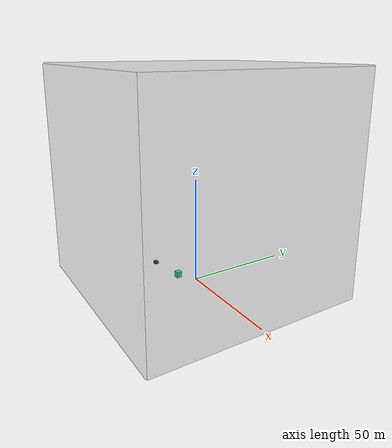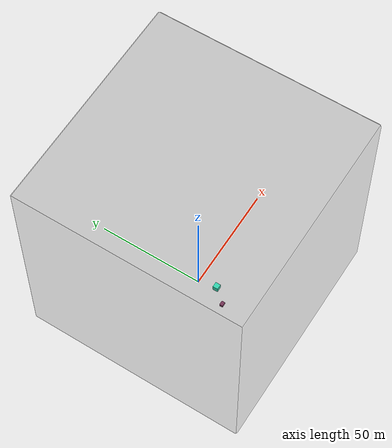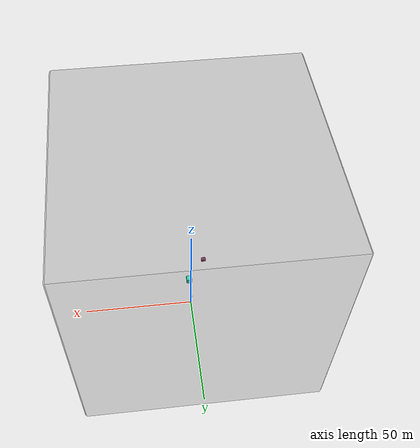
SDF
<sdf version='1.11'>
  <world name='world_0'>
    <gravity>0 0 -9.8066499999999994</gravity>
    <magnetic_field>5.5644999999999998e-06 2.2875799999999999e-05 -4.2388400000000002e-05</magnetic_field>
    <wind>
      <linear_velocity>9 6 6</linear_velocity>
    </wind>
    <physics default='false' type='ode'>
      <max_step_size>0.001</max_step_size>
      <real_time_factor>1</real_time_factor>
      <max_contacts>20</max_contacts>
    </physics>
    <model name='model_0'>
      <static>false</static>
      <self_collide>false</self_collide>
      <allow_auto_disable>true</allow_auto_disable>
      <enable_wind>false</enable_wind>
      <pose>-0.90230473867083383 -9.002325643670531 1.2890866828711856 0 0 0</pose>
      <link name='link_0'>
        <pose>0.72125466039604902 -0.59984433198233944 3.9537865830542285 0 0 0</pose>
        <inertial>
          <pose>0 0 0 0 0 0</pose>
          <mass>1</mass>
          <inertia>
            <ixx>1</ixx>
            <ixy>0</ixy>
            <ixz>0</ixz>
            <iyy>1</iyy>
            <iyz>0</iyz>
            <izz>1</izz>
          </inertia>
        </inertial>
        <enable_wind>false</enable_wind>
        <collision name='collision_0'>
          <pose>0 0 0 0 0 0</pose>
          <geometry>
            <box>
              <size>2.4986605137222089 2.4635828770102099 2.640589075707406</size>
            </box>
          </geometry>
          <surface>
            <contact>
              <collide_bitmask>255</collide_bitmask>
            </contact>
            <friction>
              <ode>
                <mu>1</mu>
                <mu2>1</mu2>
                <slip1>0</slip1>
                <slip2>0</slip2>
                <fdir1>0 0 0</fdir1>
              </ode>
            </friction>
          </surface>
        </collision>
        <visual name='visual_0'>
          <pose>0 0 0 0 0 0</pose>
          <geometry>
            <box>
              <size>2.4986605137222089 2.4635828770102099 2.640589075707406</size>
            </box>
          </geometry>
          <cast_shadows>true</cast_shadows>
          <laser_retro>0</laser_retro>
          <transparency>0</transparency>
          <visibility_flags>4294967295</visibility_flags>
          <material>
            <ambient>0.18428722 0.971375585 0.780669391 1</ambient>
            <diffuse>0.18428722 0.971375585 0.780669391 1</diffuse>
            <specular>0 0 0 1</specular>
            <emissive>0 0 0 1</emissive>
            <render_order>0</render_order>
            <lighting>true</lighting>
            <double_sided>false</double_sided>
            <shader type='pixel'/>
          </material>
        </visual>
      </link>
      <link name='link_1'>
        <pose>-7.0538937806042368 -8.2380313727426184 8.7438971605000351 0 0 0</pose>
        <inertial>
          <pose>0 0 0 0 0 0</pose>
          <mass>1</mass>
          <inertia>
            <ixx>1</ixx>
            <ixy>0</ixy>
            <ixz>0</ixz>
            <iyy>1</iyy>
            <iyz>0</iyz>
            <izz>1</izz>
          </inertia>
        </inertial>
        <enable_wind>false</enable_wind>
        <collision name='collision_1'>
          <pose>0 0 0 0 0 0</pose>
          <geometry>
            <box>
              <size>2.0339239475856665 1.5881609565033477 1.1983250287752936</size>
            </box>
          </geometry>
          <surface>
            <contact>
              <collide_bitmask>255</collide_bitmask>
            </contact>
            <friction>
              <ode>
                <mu>1</mu>
                <mu2>1</mu2>
                <slip1>0</slip1>
                <slip2>0</slip2>
                <fdir1>0 0 0</fdir1>
              </ode>
            </friction>
          </surface>
        </collision>
        <visual name='visual_1'>
          <pose>0 0 0 0 0 0</pose>
          <geometry>
            <box>
              <size>2.0339239475856665 1.5881609565033477 1.1983250287752936</size>
            </box>
          </geometry>
          <cast_shadows>true</cast_shadows>
          <laser_retro>0</laser_retro>
          <transparency>0</transparency>
          <visibility_flags>4294967295</visibility_flags>
          <material>
            <ambient>0.507174075 0.198200911 0.362574875 1</ambient>
            <diffuse>0.507174075 0.198200911 0.362574875 1</diffuse>
            <specular>0 0 0 1</specular>
            <emissive>0 0 0 1</emissive>
            <render_order>0</render_order>
            <lighting>true</lighting>
            <double_sided>false</double_sided>
            <shader type='pixel'/>
          </material>
        </visual>
      </link>
      <joint name='joint_0' type='fixed'>
        <pose>0 0 0 0 0 0</pose>
        <parent>link_1</parent>
        <child>link_0</child>
        <axis>
          <xyz>0.64539463220931337 0.18669961602873403 0.74068145790895057</xyz>
          <limit>
            <lower>-inf</lower>
            <upper>inf</upper>
            <effort>inf</effort>
            <velocity>4.7368623697783709</velocity>
            <stiffness>100000000</stiffness>
            <dissipation>1</dissipation>
          </limit>
          <dynamics>
            <spring_reference>0</spring_reference>
            <spring_stiffness>0</spring_stiffness>
            <damping>0</damping>
            <friction>0</friction>
          </dynamics>
        </axis>
        <axis2>
          <xyz>0.39899724610940546 0.58182537048538596 0.70871745841107503</xyz>
          <limit>
            <lower>-inf</lower>
            <upper>inf</upper>
            <effort>inf</effort>
            <velocity>7.2170201402602965</velocity>
            <stiffness>100000000</stiffness>
            <dissipation>1</dissipation>
          </limit>
          <dynamics>
            <spring_reference>0</spring_reference>
            <spring_stiffness>0</spring_stiffness>
            <damping>0</damping>
            <friction>0</friction>
          </dynamics>
        </axis2>
      </joint>
      <plugin name='gz::sim::systems::PythonSystemLoader' filename='gz-sim-python-system-loader-system'>
        <module_name>driver</module_name>
        <force>10000</force>
      </plugin>
    </model>
    <model name='sphere'>
      <static>false</static>
      <self_collide>false</self_collide>
      <allow_auto_disable>true</allow_auto_disable>
      <enable_wind>false</enable_wind>
      <pose>0 0 5 0 0 0</pose>
      <link name='sphere_link'>
        <pose>0 0 0 0 0 0</pose>
        <inertial>
          <pose>0 0 0 0 0 0</pose>
          <mass>3</mass>
          <inertia>
            <ixx>3</ixx>
            <ixy>0</ixy>
            <ixz>0</ixz>
            <iyy>3</iyy>
            <iyz>0</iyz>
            <izz>3</izz>
          </inertia>
        </inertial>
        <enable_wind>false</enable_wind>
        <collision name='sphere_collision'>
          <pose>0 0 0 0 0 0</pose>
          <geometry>
            <sphere>
              <radius>0.5</radius>
            </sphere>
          </geometry>
          <surface>
            <contact>
              <collide_bitmask>255</collide_bitmask>
            </contact>
            <friction>
              <ode>
                <mu>1</mu>
                <mu2>1</mu2>
                <slip1>0</slip1>
                <slip2>0</slip2>
                <fdir1>0 0 0</fdir1>
              </ode>
            </friction>
          </surface>
        </collision>
        <visual name='sphere_visual'>
          <pose>0 0 0 0 0 0</pose>
          <geometry>
            <sphere>
              <radius>0.5</radius>
            </sphere>
          </geometry>
          <cast_shadows>true</cast_shadows>
          <laser_retro>0</laser_retro>
          <transparency>0</transparency>
          <visibility_flags>4294967295</visibility_flags>
          <material>
            <ambient>0 0 1 1</ambient>
            <diffuse>0 0 1 1</diffuse>
            <specular>0 0 1 1</specular>
            <emissive>0 0 0 1</emissive>
            <render_order>0</render_order>
            <lighting>true</lighting>
            <double_sided>false</double_sided>
            <shader type='pixel'/>
          </material>
        </visual>
      </link>
      <plugin name='gz::sim::systems::KineticEnergyMonitor' filename='gz-sim-kinetic-energy-monitor-system'>
        <link_name>sphere_link</link_name>
        <kinetic_energy_threshold>100</kinetic_energy_threshold>
      </plugin>
    </model>
    <model name='ground_model'>
      <static>true</static>
      <self_collide>false</self_collide>
      <allow_auto_disable>true</allow_auto_disable>
      <enable_wind>false</enable_wind>
      <pose>0 0 0 0 0 0</pose>
      <link name='ground_link'>
        <pose>0 0 0 0 0 0</pose>
        <inertial>
          <pose>0 0 0 0 0 0</pose>
          <mass>1</mass>
          <inertia>
            <ixx>1</ixx>
            <ixy>0</ixy>
            <ixz>0</ixz>
            <iyy>1</iyy>
            <iyz>0</iyz>
            <izz>1</izz>
          </inertia>
        </inertial>
        <enable_wind>false</enable_wind>
        <collision name='ground_collision'>
          <pose>0 0 0 0 0 0</pose>
          <geometry>
            <plane>
              <normal>0 0 1</normal>
              <size>100 100</size>
            </plane>
          </geometry>
          <surface>
            <contact>
              <collide_bitmask>255</collide_bitmask>
            </contact>
            <friction>
              <ode>
                <mu>1</mu>
                <mu2>1</mu2>
                <slip1>0</slip1>
                <slip2>0</slip2>
                <fdir1>0 0 0</fdir1>
              </ode>
            </friction>
          </surface>
        </collision>
      </link>
    </model>
    <model name='ceiling_model'>
      <static>true</static>
      <self_collide>false</self_collide>
      <allow_auto_disable>true</allow_auto_disable>
      <enable_wind>false</enable_wind>
      <pose>0 0 100 0 0 0</pose>
      <link name='ceiling_link'>
        <pose>0 0 0 0 0 0</pose>
        <inertial>
          <pose>0 0 0 0 0 0</pose>
          <mass>1</mass>
          <inertia>
            <ixx>1</ixx>
            <ixy>0</ixy>
            <ixz>0</ixz>
            <iyy>1</iyy>
            <iyz>0</iyz>
            <izz>1</izz>
          </inertia>
        </inertial>
        <enable_wind>false</enable_wind>
        <collision name='ceiling_collision'>
          <pose>0 0 0 0 0 0</pose>
          <geometry>
            <box>
              <size>102 102 3</size>
            </box>
          </geometry>
          <surface>
            <contact>
              <collide_bitmask>255</collide_bitmask>
            </contact>
            <friction>
              <ode>
                <mu>1</mu>
                <mu2>1</mu2>
                <slip1>0</slip1>
                <slip2>0</slip2>
                <fdir1>0 0 0</fdir1>
              </ode>
            </friction>
          </surface>
        </collision>
        <visual name='ceiling_visual'>
          <pose>0 0 0 0 0 0</pose>
          <geometry>
            <box>
              <size>102 102 3</size>
            </box>
          </geometry>
          <cast_shadows>true</cast_shadows>
          <laser_retro>0</laser_retro>
          <transparency>0</transparency>
          <visibility_flags>4294967295</visibility_flags>
          <material>
            <ambient>0.200000003 0.200000003 0.200000003 0.200000003</ambient>
            <diffuse>0.200000003 0.200000003 0.200000003 0.200000003</diffuse>
            <specular>0 0 0 1</specular>
            <emissive>0 0 0 1</emissive>
            <render_order>0</render_order>
            <lighting>true</lighting>
            <double_sided>false</double_sided>
            <shader type='pixel'/>
          </material>
        </visual>
      </link>
    </model>
    <model name='west_model'>
      <static>true</static>
      <self_collide>false</self_collide>
      <allow_auto_disable>true</allow_auto_disable>
      <enable_wind>false</enable_wind>
      <pose>0 50 50 0 0 0</pose>
      <link name='west_link'>
        <pose>0 0 0 0 0 0</pose>
        <inertial>
          <pose>0 0 0 0 0 0</pose>
          <mass>1</mass>
          <inertia>
            <ixx>1</ixx>
            <ixy>0</ixy>
            <ixz>0</ixz>
            <iyy>1</iyy>
            <iyz>0</iyz>
            <izz>1</izz>
          </inertia>
        </inertial>
        <enable_wind>false</enable_wind>
        <collision name='west_collision'>
          <pose>0 0 0 0 0 0</pose>
          <geometry>
            <box>
              <size>102 3 102</size>
            </box>
          </geometry>
          <surface>
            <contact>
              <collide_bitmask>255</collide_bitmask>
            </contact>
            <friction>
              <ode>
                <mu>1</mu>
                <mu2>1</mu2>
                <slip1>0</slip1>
                <slip2>0</slip2>
                <fdir1>0 0 0</fdir1>
              </ode>
            </friction>
          </surface>
        </collision>
        <visual name='west_visual'>
          <pose>0 0 0 0 0 0</pose>
          <geometry>
            <box>
              <size>102 3 102</size>
            </box>
          </geometry>
          <cast_shadows>true</cast_shadows>
          <laser_retro>0</laser_retro>
          <transparency>0</transparency>
          <visibility_flags>4294967295</visibility_flags>
          <material>
            <ambient>0.200000003 0.200000003 0.200000003 0.200000003</ambient>
            <diffuse>0.200000003 0.200000003 0.200000003 0.200000003</diffuse>
            <specular>0 0 0 1</specular>
            <emissive>0 0 0 1</emissive>
            <render_order>0</render_order>
            <lighting>true</lighting>
            <double_sided>false</double_sided>
            <shader type='pixel'/>
          </material>
        </visual>
      </link>
    </model>
    <model name='east_model'>
      <static>true</static>
      <self_collide>false</self_collide>
      <allow_auto_disable>true</allow_auto_disable>
      <enable_wind>false</enable_wind>
      <pose>0 -50 50 0 0 0</pose>
      <link name='east_link'>
        <pose>0 0 0 0 0 0</pose>
        <inertial>
          <pose>0 0 0 0 0 0</pose>
          <mass>1</mass>
          <inertia>
            <ixx>1</ixx>
            <ixy>0</ixy>
            <ixz>0</ixz>
            <iyy>1</iyy>
            <iyz>0</iyz>
            <izz>1</izz>
          </inertia>
        </inertial>
        <enable_wind>false</enable_wind>
        <collision name='east_collision'>
          <pose>0 0 0 0 0 0</pose>
          <geometry>
            <box>
              <size>102 3 102</size>
            </box>
          </geometry>
          <surface>
            <contact>
              <collide_bitmask>255</collide_bitmask>
            </contact>
            <friction>
              <ode>
                <mu>1</mu>
                <mu2>1</mu2>
                <slip1>0</slip1>
                <slip2>0</slip2>
                <fdir1>0 0 0</fdir1>
              </ode>
            </friction>
          </surface>
        </collision>
        <visual name='east_visual'>
          <pose>0 0 0 0 0 0</pose>
          <geometry>
            <box>
              <size>102 3 102</size>
            </box>
          </geometry>
          <cast_shadows>true</cast_shadows>
          <laser_retro>0</laser_retro>
          <transparency>0</transparency>
          <visibility_flags>4294967295</visibility_flags>
          <material>
            <ambient>0.200000003 0.200000003 0.200000003 0.200000003</ambient>
            <diffuse>0.200000003 0.200000003 0.200000003 0.200000003</diffuse>
            <specular>0 0 0 1</specular>
            <emissive>0 0 0 1</emissive>
            <render_order>0</render_order>
            <lighting>true</lighting>
            <double_sided>false</double_sided>
            <shader type='pixel'/>
          </material>
        </visual>
      </link>
    </model>
    <model name='north_model'>
      <static>true</static>
      <self_collide>false</self_collide>
      <allow_auto_disable>true</allow_auto_disable>
      <enable_wind>false</enable_wind>
      <pose>50 0 50 0 0 0</pose>
      <link name='north_link'>
        <pose>0 0 0 0 0 0</pose>
        <inertial>
          <pose>0 0 0 0 0 0</pose>
          <mass>1</mass>
          <inertia>
            <ixx>1</ixx>
            <ixy>0</ixy>
            <ixz>0</ixz>
            <iyy>1</iyy>
            <iyz>0</iyz>
            <izz>1</izz>
          </inertia>
        </inertial>
        <enable_wind>false</enable_wind>
        <collision name='north_collision'>
          <pose>0 0 0 0 0 0</pose>
          <geometry>
            <box>
              <size>3 102 102</size>
            </box>
          </geometry>
          <surface>
            <contact>
              <collide_bitmask>255</collide_bitmask>
            </contact>
            <friction>
              <ode>
                <mu>1</mu>
                <mu2>1</mu2>
                <slip1>0</slip1>
                <slip2>0</slip2>
                <fdir1>0 0 0</fdir1>
              </ode>
            </friction>
          </surface>
        </collision>
        <visual name='north_visual'>
          <pose>0 0 0 0 0 0</pose>
          <geometry>
            <box>
              <size>3 102 102</size>
            </box>
          </geometry>
          <cast_shadows>true</cast_shadows>
          <laser_retro>0</laser_retro>
          <transparency>0</transparency>
          <visibility_flags>4294967295</visibility_flags>
          <material>
            <ambient>0.200000003 0.200000003 0.200000003 0.200000003</ambient>
            <diffuse>0.200000003 0.200000003 0.200000003 0.200000003</diffuse>
            <specular>0 0 0 1</specular>
            <emissive>0 0 0 1</emissive>
            <render_order>0</render_order>
            <lighting>true</lighting>
            <double_sided>false</double_sided>
            <shader type='pixel'/>
          </material>
        </visual>
      </link>
    </model>
    <model name='south_model'>
      <static>true</static>
      <self_collide>false</self_collide>
      <allow_auto_disable>true</allow_auto_disable>
      <enable_wind>false</enable_wind>
      <pose>-50 0 50 0 0 0</pose>
      <link name='south_link'>
        <pose>0 0 0 0 0 0</pose>
        <inertial>
          <pose>0 0 0 0 0 0</pose>
          <mass>1</mass>
          <inertia>
            <ixx>1</ixx>
            <ixy>0</ixy>
            <ixz>0</ixz>
            <iyy>1</iyy>
            <iyz>0</iyz>
            <izz>1</izz>
          </inertia>
        </inertial>
        <enable_wind>false</enable_wind>
        <collision name='south_collision'>
          <pose>0 0 0 0 0 0</pose>
          <geometry>
            <box>
              <size>3 102 102</size>
            </box>
          </geometry>
          <surface>
            <contact>
              <collide_bitmask>255</collide_bitmask>
            </contact>
            <friction>
              <ode>
                <mu>1</mu>
                <mu2>1</mu2>
                <slip1>0</slip1>
                <slip2>0</slip2>
                <fdir1>0 0 0</fdir1>
              </ode>
            </friction>
          </surface>
        </collision>
        <visual name='south_visual'>
          <pose>0 0 0 0 0 0</pose>
          <geometry>
            <box>
              <size>3 102 102</size>
            </box>
          </geometry>
          <cast_shadows>true</cast_shadows>
          <laser_retro>0</laser_retro>
          <transparency>0</transparency>
          <visibility_flags>4294967295</visibility_flags>
          <material>
            <ambient>0.200000003 0.200000003 0.200000003 0.200000003</ambient>
            <diffuse>0.200000003 0.200000003 0.200000003 0.200000003</diffuse>
            <specular>0 0 0 1</specular>
            <emissive>0 0 0 1</emissive>
            <render_order>0</render_order>
            <lighting>true</lighting>
            <double_sided>false</double_sided>
            <shader type='pixel'/>
          </material>
        </visual>
      </link>
    </model>
    <atmosphere type='adiabatic'>
      <temperature>288.14999999999998</temperature>
      <pressure>101325</pressure>
      <temperature_gradient>-0.0064999999999999997</temperature_gradient>
    </atmosphere>
    <scene>
      <ambient>0.400000006 0.400000006 0.400000006 1</ambient>
      <background>0.699999988 0.699999988 0.699999988 1</background>
      <grid>true</grid>
      <origin_visual>true</origin_visual>
      <shadows>true</shadows>
    </scene>
  </world>
</sdf>
